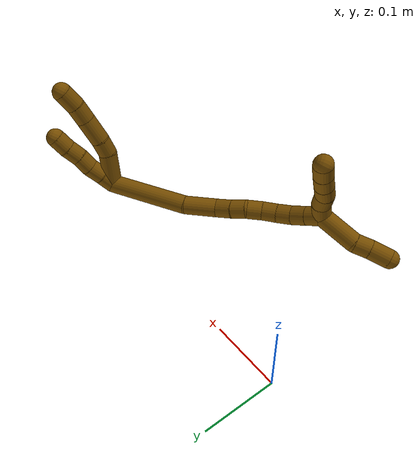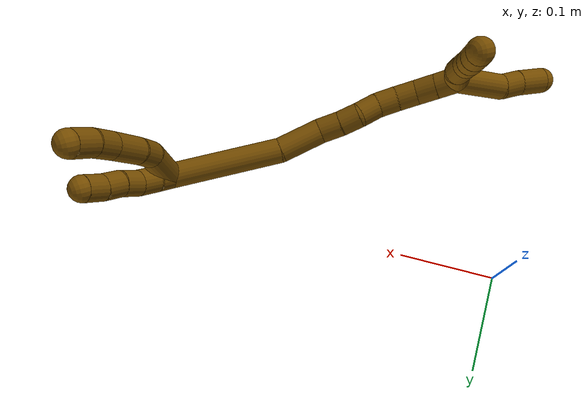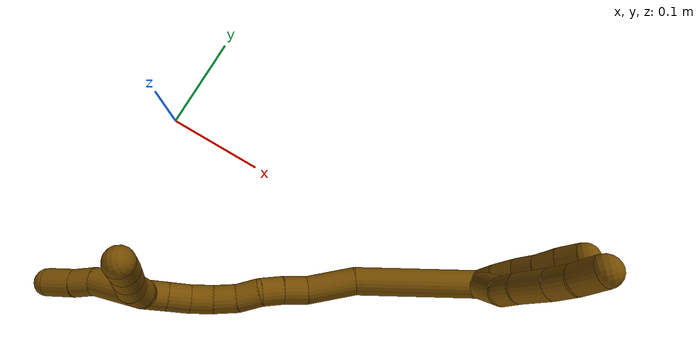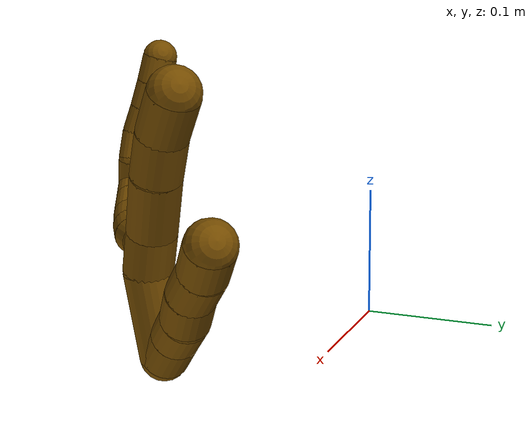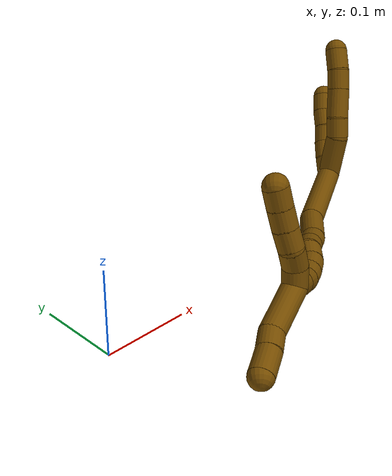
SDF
<sdf version="1.7">
 <world name="default">
  <model name="12">
   <static>0</static>
   <link name="12">
    <collision name="collision-cylinder-e_1_2_8">
     <pose>0.006057 -0.020155 0.011337 1.05842 0.256178 0.150369</pose>
     <geometry><cylinder><radius>0.0125</radius><length>0.047809</length></cylinder></geometry>
     <surface>
      <friction><ode><mu>1.16</mu><mu2>1.16</mu2><slip1>0</slip1><slip2>0</slip2></ode></friction>
      <contact><ode><kp>1e+06</kp><kd>1</kd><max_vel>0</max_vel><min_depth>0.001</min_depth></ode></contact>
     </surface>
    </collision>
    <visual name="visual-cylinder-e_1_2_8">
     <pose>0.006057 -0.020155 0.011337 1.05842 0.256178 0.150369</pose>
     <geometry><cylinder><radius>0.0125</radius><length>0.047809</length></cylinder></geometry>
     <material><ambient>0.466667 0.301961 0 1</ambient></material>
    </visual>
    <collision name="collision-cylinder-e_2_8_9">
     <pose>0.012549 -0.048483 0.03026 0.822571 0.039001 0.017012</pose>
     <geometry><cylinder><radius>0.0125</radius><length>0.022321</length></cylinder></geometry>
     <surface>
      <friction><ode><mu>1.16</mu><mu2>1.16</mu2><slip1>0</slip1><slip2>0</slip2></ode></friction>
      <contact><ode><kp>1e+06</kp><kd>1</kd><max_vel>0</max_vel><min_depth>0.001</min_depth></ode></contact>
     </surface>
    </collision>
    <visual name="visual-cylinder-e_2_8_9">
     <pose>0.012549 -0.048483 0.03026 0.822571 0.039001 0.017012</pose>
     <geometry><cylinder><radius>0.0125</radius><length>0.022321</length></cylinder></geometry>
     <material><ambient>0.466667 0.301961 0 1</ambient></material>
    </visual>
    <collision name="collision-cylinder-e_3_9_10">
     <pose>0.014317 -0.067016 0.050857 0.67253 0.079948 0.027958</pose>
     <geometry><cylinder><radius>0.0125</radius><length>0.033367</length></cylinder></geometry>
     <surface>
      <friction><ode><mu>1.16</mu><mu2>1.16</mu2><slip1>0</slip1><slip2>0</slip2></ode></friction>
      <contact><ode><kp>1e+06</kp><kd>1</kd><max_vel>0</max_vel><min_depth>0.001</min_depth></ode></contact>
     </surface>
    </collision>
    <visual name="visual-cylinder-e_3_9_10">
     <pose>0.014317 -0.067016 0.050857 0.67253 0.079948 0.027958</pose>
     <geometry><cylinder><radius>0.0125</radius><length>0.033367</length></cylinder></geometry>
     <material><ambient>0.466667 0.301961 0 1</ambient></material>
    </visual>
    <collision name="collision-cylinder-e_4_10_11">
     <pose>0.015861 -0.084831 0.072421 0.716732 0.018652 0.006986</pose>
     <geometry><cylinder><radius>0.0125</radius><length>0.022701</length></cylinder></geometry>
     <surface>
      <friction><ode><mu>1.16</mu><mu2>1.16</mu2><slip1>0</slip1><slip2>0</slip2></ode></friction>
      <contact><ode><kp>1e+06</kp><kd>1</kd><max_vel>0</max_vel><min_depth>0.001</min_depth></ode></contact>
     </surface>
    </collision>
    <visual name="visual-cylinder-e_4_10_11">
     <pose>0.015861 -0.084831 0.072421 0.716732 0.018652 0.006986</pose>
     <geometry><cylinder><radius>0.0125</radius><length>0.022701</length></cylinder></geometry>
     <material><ambient>0.466667 0.301961 0 1</ambient></material>
    </visual>
    <collision name="collision-cylinder-e_5_11_6">
     <pose>0.015303 -0.098823 0.090893 0.582867 -0.064731 -0.019424</pose>
     <geometry><cylinder><radius>0.0125</radius><length>0.023803</length></cylinder></geometry>
     <surface>
      <friction><ode><mu>1.16</mu><mu2>1.16</mu2><slip1>0</slip1><slip2>0</slip2></ode></friction>
      <contact><ode><kp>1e+06</kp><kd>1</kd><max_vel>0</max_vel><min_depth>0.001</min_depth></ode></contact>
     </surface>
    </collision>
    <visual name="visual-cylinder-e_5_11_6">
     <pose>0.015303 -0.098823 0.090893 0.582867 -0.064731 -0.019424</pose>
     <geometry><cylinder><radius>0.0125</radius><length>0.023803</length></cylinder></geometry>
     <material><ambient>0.466667 0.301961 0 1</ambient></material>
    </visual>
    <collision name="collision-cylinder-e_1_2_12">
     <pose>-0.00093 -0.00413 0.00906 0.427752 -0.093155 -0.020247</pose>
     <geometry><cylinder><radius>0.0125</radius><length>0.02</length></cylinder></geometry>
     <surface>
      <friction><ode><mu>1.16</mu><mu2>1.16</mu2><slip1>0</slip1><slip2>0</slip2></ode></friction>
      <contact><ode><kp>1e+06</kp><kd>1</kd><max_vel>0</max_vel><min_depth>0.001</min_depth></ode></contact>
     </surface>
    </collision>
    <visual name="visual-cylinder-e_1_2_12">
     <pose>-0.00093 -0.00413 0.00906 0.427752 -0.093155 -0.020247</pose>
     <geometry><cylinder><radius>0.0125</radius><length>0.02</length></cylinder></geometry>
     <material><ambient>0.466667 0.301961 0 1</ambient></material>
    </visual>
    <collision name="collision-cylinder-e_2_12_13">
     <pose>-0.002304 -0.011424 0.027595 0.322234 -0.044398 -0.007217</pose>
     <geometry><cylinder><radius>0.0125</radius><length>0.02</length></cylinder></geometry>
     <surface>
      <friction><ode><mu>1.16</mu><mu2>1.16</mu2><slip1>0</slip1><slip2>0</slip2></ode></friction>
      <contact><ode><kp>1e+06</kp><kd>1</kd><max_vel>0</max_vel><min_depth>0.001</min_depth></ode></contact>
     </surface>
    </collision>
    <visual name="visual-cylinder-e_2_12_13">
     <pose>-0.002304 -0.011424 0.027595 0.322234 -0.044398 -0.007217</pose>
     <geometry><cylinder><radius>0.0125</radius><length>0.02</length></cylinder></geometry>
     <material><ambient>0.466667 0.301961 0 1</ambient></material>
    </visual>
    <collision name="collision-cylinder-e_3_13_14">
     <pose>-0.002241 -0.019359 0.045845 0.497995 0.050766 0.012911</pose>
     <geometry><cylinder><radius>0.0125</radius><length>0.02</length></cylinder></geometry>
     <surface>
      <friction><ode><mu>1.16</mu><mu2>1.16</mu2><slip1>0</slip1><slip2>0</slip2></ode></friction>
      <contact><ode><kp>1e+06</kp><kd>1</kd><max_vel>0</max_vel><min_depth>0.001</min_depth></ode></contact>
     </surface>
    </collision>
    <visual name="visual-cylinder-e_3_13_14">
     <pose>-0.002241 -0.019359 0.045845 0.497995 0.050766 0.012911</pose>
     <geometry><cylinder><radius>0.0125</radius><length>0.02</length></cylinder></geometry>
     <material><ambient>0.466667 0.301961 0 1</ambient></material>
    </visual>
    <collision name="collision-cylinder-e_4_14_15">
     <pose>-0.002512 -0.028008 0.063803 0.399632 -0.077939 -0.015792</pose>
     <geometry><cylinder><radius>0.0125</radius><length>0.02</length></cylinder></geometry>
     <surface>
      <friction><ode><mu>1.16</mu><mu2>1.16</mu2><slip1>0</slip1><slip2>0</slip2></ode></friction>
      <contact><ode><kp>1e+06</kp><kd>1</kd><max_vel>0</max_vel><min_depth>0.001</min_depth></ode></contact>
     </surface>
    </collision>
    <visual name="visual-cylinder-e_4_14_15">
     <pose>-0.002512 -0.028008 0.063803 0.399632 -0.077939 -0.015792</pose>
     <geometry><cylinder><radius>0.0125</radius><length>0.02</length></cylinder></geometry>
     <material><ambient>0.466667 0.301961 0 1</ambient></material>
    </visual>
    <collision name="collision-cylinder-e_5_15_5">
     <pose>-0.002962 -0.036351 0.08193 0.463019 0.03283 0.00774</pose>
     <geometry><cylinder><radius>0.0125</radius><length>0.02</length></cylinder></geometry>
     <surface>
      <friction><ode><mu>1.16</mu><mu2>1.16</mu2><slip1>0</slip1><slip2>0</slip2></ode></friction>
      <contact><ode><kp>1e+06</kp><kd>1</kd><max_vel>0</max_vel><min_depth>0.001</min_depth></ode></contact>
     </surface>
    </collision>
    <visual name="visual-cylinder-e_5_15_5">
     <pose>-0.002962 -0.036351 0.08193 0.463019 0.03283 0.00774</pose>
     <geometry><cylinder><radius>0.0125</radius><length>0.02</length></cylinder></geometry>
     <material><ambient>0.466667 0.301961 0 1</ambient></material>
    </visual>
    <collision name="collision-cylinder-e_1_2_16">
     <pose>-0.009044 -0.021891 -0.050155 2.73005 -0.163786 -0.749299</pose>
     <geometry><cylinder><radius>0.0125</radius><length>0.110934</length></cylinder></geometry>
     <surface>
      <friction><ode><mu>1.16</mu><mu2>1.16</mu2><slip1>0</slip1><slip2>0</slip2></ode></friction>
      <contact><ode><kp>1e+06</kp><kd>1</kd><max_vel>0</max_vel><min_depth>0.001</min_depth></ode></contact>
     </surface>
    </collision>
    <visual name="visual-cylinder-e_1_2_16">
     <pose>-0.009044 -0.021891 -0.050155 2.73005 -0.163786 -0.749299</pose>
     <geometry><cylinder><radius>0.0125</radius><length>0.110934</length></cylinder></geometry>
     <material><ambient>0.466667 0.301961 0 1</ambient></material>
    </visual>
    <collision name="collision-cylinder-e_2_16_17">
     <pose>-0.01687 -0.053241 -0.120219 2.69806 0.055224 0.243772</pose>
     <geometry><cylinder><radius>0.0125</radius><length>0.04415</length></cylinder></geometry>
     <surface>
      <friction><ode><mu>1.16</mu><mu2>1.16</mu2><slip1>0</slip1><slip2>0</slip2></ode></friction>
      <contact><ode><kp>1e+06</kp><kd>1</kd><max_vel>0</max_vel><min_depth>0.001</min_depth></ode></contact>
     </surface>
    </collision>
    <visual name="visual-cylinder-e_2_16_17">
     <pose>-0.01687 -0.053241 -0.120219 2.69806 0.055224 0.243772</pose>
     <geometry><cylinder><radius>0.0125</radius><length>0.04415</length></cylinder></geometry>
     <material><ambient>0.466667 0.301961 0 1</ambient></material>
    </visual>
    <collision name="collision-cylinder-e_3_17_18">
     <pose>-0.016837 -0.069395 -0.148886 2.48896 -0.10714 -0.314285</pose>
     <geometry><cylinder><radius>0.0125</radius><length>0.022176</length></cylinder></geometry>
     <surface>
      <friction><ode><mu>1.16</mu><mu2>1.16</mu2><slip1>0</slip1><slip2>0</slip2></ode></friction>
      <contact><ode><kp>1e+06</kp><kd>1</kd><max_vel>0</max_vel><min_depth>0.001</min_depth></ode></contact>
     </surface>
    </collision>
    <visual name="visual-cylinder-e_3_17_18">
     <pose>-0.016837 -0.069395 -0.148886 2.48896 -0.10714 -0.314285</pose>
     <geometry><cylinder><radius>0.0125</radius><length>0.022176</length></cylinder></geometry>
     <material><ambient>0.466667 0.301961 0 1</ambient></material>
    </visual>
    <collision name="collision-cylinder-e_4_18_19">
     <pose>-0.018192 -0.082241 -0.165577 2.48193 -0.016862 -0.049247</pose>
     <geometry><cylinder><radius>0.0125</radius><length>0.020079</length></cylinder></geometry>
     <surface>
      <friction><ode><mu>1.16</mu><mu2>1.16</mu2><slip1>0</slip1><slip2>0</slip2></ode></friction>
      <contact><ode><kp>1e+06</kp><kd>1</kd><max_vel>0</max_vel><min_depth>0.001</min_depth></ode></contact>
     </surface>
    </collision>
    <visual name="visual-cylinder-e_4_18_19">
     <pose>-0.018192 -0.082241 -0.165577 2.48193 -0.016862 -0.049247</pose>
     <geometry><cylinder><radius>0.0125</radius><length>0.020079</length></cylinder></geometry>
     <material><ambient>0.466667 0.301961 0 1</ambient></material>
    </visual>
    <collision name="collision-cylinder-e_5_19_20">
     <pose>-0.017186 -0.092067 -0.183148 2.77748 0.113495 0.598622</pose>
     <geometry><cylinder><radius>0.0125</radius><length>0.020764</length></cylinder></geometry>
     <surface>
      <friction><ode><mu>1.16</mu><mu2>1.16</mu2><slip1>0</slip1><slip2>0</slip2></ode></friction>
      <contact><ode><kp>1e+06</kp><kd>1</kd><max_vel>0</max_vel><min_depth>0.001</min_depth></ode></contact>
     </surface>
    </collision>
    <visual name="visual-cylinder-e_5_19_20">
     <pose>-0.017186 -0.092067 -0.183148 2.77748 0.113495 0.598622</pose>
     <geometry><cylinder><radius>0.0125</radius><length>0.020764</length></cylinder></geometry>
     <material><ambient>0.466667 0.301961 0 1</ambient></material>
    </visual>
    <collision name="collision-cylinder-e_6_20_21">
     <pose>-0.016854 -0.100693 -0.201876 2.64268 -0.08138 -0.316928</pose>
     <geometry><cylinder><radius>0.0125</radius><length>0.02077</length></cylinder></geometry>
     <surface>
      <friction><ode><mu>1.16</mu><mu2>1.16</mu2><slip1>0</slip1><slip2>0</slip2></ode></friction>
      <contact><ode><kp>1e+06</kp><kd>1</kd><max_vel>0</max_vel><min_depth>0.001</min_depth></ode></contact>
     </surface>
    </collision>
    <visual name="visual-cylinder-e_6_20_21">
     <pose>-0.016854 -0.100693 -0.201876 2.64268 -0.08138 -0.316928</pose>
     <geometry><cylinder><radius>0.0125</radius><length>0.02077</length></cylinder></geometry>
     <material><ambient>0.466667 0.301961 0 1</ambient></material>
    </visual>
    <collision name="collision-cylinder-e_7_21_22">
     <pose>-0.01914 -0.111504 -0.219237 2.52534 -0.141282 -0.43754</pose>
     <geometry><cylinder><radius>0.0125</radius><length>0.020477</length></cylinder></geometry>
     <surface>
      <friction><ode><mu>1.16</mu><mu2>1.16</mu2><slip1>0</slip1><slip2>0</slip2></ode></friction>
      <contact><ode><kp>1e+06</kp><kd>1</kd><max_vel>0</max_vel><min_depth>0.001</min_depth></ode></contact>
     </surface>
    </collision>
    <visual name="visual-cylinder-e_7_21_22">
     <pose>-0.01914 -0.111504 -0.219237 2.52534 -0.141282 -0.43754</pose>
     <geometry><cylinder><radius>0.0125</radius><length>0.020477</length></cylinder></geometry>
     <material><ambient>0.466667 0.301961 0 1</ambient></material>
    </visual>
    <collision name="collision-cylinder-e_8_22_23">
     <pose>-0.022521 -0.124671 -0.234413 2.32778 -0.190545 -0.436422</pose>
     <geometry><cylinder><radius>0.0125</radius><length>0.020478</length></cylinder></geometry>
     <surface>
      <friction><ode><mu>1.16</mu><mu2>1.16</mu2><slip1>0</slip1><slip2>0</slip2></ode></friction>
      <contact><ode><kp>1e+06</kp><kd>1</kd><max_vel>0</max_vel><min_depth>0.001</min_depth></ode></contact>
     </surface>
    </collision>
    <visual name="visual-cylinder-e_8_22_23">
     <pose>-0.022521 -0.124671 -0.234413 2.32778 -0.190545 -0.436422</pose>
     <geometry><cylinder><radius>0.0125</radius><length>0.020478</length></cylinder></geometry>
     <material><ambient>0.466667 0.301961 0 1</ambient></material>
    </visual>
    <collision name="collision-cylinder-e_9_23_1">
     <pose>-0.02633 -0.139171 -0.248137 2.32959 -0.186493 -0.428407</pose>
     <geometry><cylinder><radius>0.0125</radius><length>0.020172</length></cylinder></geometry>
     <surface>
      <friction><ode><mu>1.16</mu><mu2>1.16</mu2><slip1>0</slip1><slip2>0</slip2></ode></friction>
      <contact><ode><kp>1e+06</kp><kd>1</kd><max_vel>0</max_vel><min_depth>0.001</min_depth></ode></contact>
     </surface>
    </collision>
    <visual name="visual-cylinder-e_9_23_1">
     <pose>-0.02633 -0.139171 -0.248137 2.32959 -0.186493 -0.428407</pose>
     <geometry><cylinder><radius>0.0125</radius><length>0.020172</length></cylinder></geometry>
     <material><ambient>0.466667 0.301961 0 1</ambient></material>
    </visual>
    <collision name="collision-cylinder-e_1_1_24">
     <pose>-0.027457 -0.154719 -0.249512 0.993278 0.074424 0.040347</pose>
     <geometry><cylinder><radius>0.0125</radius><length>0.02</length></cylinder></geometry>
     <surface>
      <friction><ode><mu>1.16</mu><mu2>1.16</mu2><slip1>0</slip1><slip2>0</slip2></ode></friction>
      <contact><ode><kp>1e+06</kp><kd>1</kd><max_vel>0</max_vel><min_depth>0.001</min_depth></ode></contact>
     </surface>
    </collision>
    <visual name="visual-cylinder-e_1_1_24">
     <pose>-0.027457 -0.154719 -0.249512 0.993278 0.074424 0.040347</pose>
     <geometry><cylinder><radius>0.0125</radius><length>0.02</length></cylinder></geometry>
     <material><ambient>0.466667 0.301961 0 1</ambient></material>
    </visual>
    <collision name="collision-cylinder-e_2_24_25">
     <pose>-0.027775 -0.172632 -0.241328 1.29165 -0.106428 -0.080241</pose>
     <geometry><cylinder><radius>0.0125</radius><length>0.02</length></cylinder></geometry>
     <surface>
      <friction><ode><mu>1.16</mu><mu2>1.16</mu2><slip1>0</slip1><slip2>0</slip2></ode></friction>
      <contact><ode><kp>1e+06</kp><kd>1</kd><max_vel>0</max_vel><min_depth>0.001</min_depth></ode></contact>
     </surface>
    </collision>
    <visual name="visual-cylinder-e_2_24_25">
     <pose>-0.027775 -0.172632 -0.241328 1.29165 -0.106428 -0.080241</pose>
     <geometry><cylinder><radius>0.0125</radius><length>0.02</length></cylinder></geometry>
     <material><ambient>0.466667 0.301961 0 1</ambient></material>
    </visual>
    <collision name="collision-cylinder-e_3_25_26">
     <pose>-0.030924 -0.190501 -0.233432 1.01547 -0.210182 -0.117241</pose>
     <geometry><cylinder><radius>0.0125</radius><length>0.02</length></cylinder></geometry>
     <surface>
      <friction><ode><mu>1.16</mu><mu2>1.16</mu2><slip1>0</slip1><slip2>0</slip2></ode></friction>
      <contact><ode><kp>1e+06</kp><kd>1</kd><max_vel>0</max_vel><min_depth>0.001</min_depth></ode></contact>
     </surface>
    </collision>
    <visual name="visual-cylinder-e_3_25_26">
     <pose>-0.030924 -0.190501 -0.233432 1.01547 -0.210182 -0.117241</pose>
     <geometry><cylinder><radius>0.0125</radius><length>0.02</length></cylinder></geometry>
     <material><ambient>0.466667 0.301961 0 1</ambient></material>
    </visual>
    <collision name="collision-cylinder-e_4_26_27">
     <pose>-0.034711 -0.207201 -0.223107 1.01864 -0.170891 -0.095597</pose>
     <geometry><cylinder><radius>0.0125</radius><length>0.02</length></cylinder></geometry>
     <surface>
      <friction><ode><mu>1.16</mu><mu2>1.16</mu2><slip1>0</slip1><slip2>0</slip2></ode></friction>
      <contact><ode><kp>1e+06</kp><kd>1</kd><max_vel>0</max_vel><min_depth>0.001</min_depth></ode></contact>
     </surface>
    </collision>
    <visual name="visual-cylinder-e_4_26_27">
     <pose>-0.034711 -0.207201 -0.223107 1.01864 -0.170891 -0.095597</pose>
     <geometry><cylinder><radius>0.0125</radius><length>0.02</length></cylinder></geometry>
     <material><ambient>0.466667 0.301961 0 1</ambient></material>
    </visual>
    <collision name="collision-cylinder-e_5_27_4">
     <pose>-0.037835 -0.224229 -0.213104 1.06064 -0.142851 -0.083854</pose>
     <geometry><cylinder><radius>0.0125</radius><length>0.02</length></cylinder></geometry>
     <surface>
      <friction><ode><mu>1.16</mu><mu2>1.16</mu2><slip1>0</slip1><slip2>0</slip2></ode></friction>
      <contact><ode><kp>1e+06</kp><kd>1</kd><max_vel>0</max_vel><min_depth>0.001</min_depth></ode></contact>
     </surface>
    </collision>
    <visual name="visual-cylinder-e_5_27_4">
     <pose>-0.037835 -0.224229 -0.213104 1.06064 -0.142851 -0.083854</pose>
     <geometry><cylinder><radius>0.0125</radius><length>0.02</length></cylinder></geometry>
     <material><ambient>0.466667 0.301961 0 1</ambient></material>
    </visual>
    <collision name="collision-cylinder-e_1_1_28">
     <pose>-0.037875 -0.147132 -0.279128 3.10983 -0.380535 -2.97703</pose>
     <geometry><cylinder><radius>0.0125</radius><length>0.052095</length></cylinder></geometry>
     <surface>
      <friction><ode><mu>1.16</mu><mu2>1.16</mu2><slip1>0</slip1><slip2>0</slip2></ode></friction>
      <contact><ode><kp>1e+06</kp><kd>1</kd><max_vel>0</max_vel><min_depth>0.001</min_depth></ode></contact>
     </surface>
    </collision>
    <visual name="visual-cylinder-e_1_1_28">
     <pose>-0.037875 -0.147132 -0.279128 3.10983 -0.380535 -2.97703</pose>
     <geometry><cylinder><radius>0.0125</radius><length>0.052095</length></cylinder></geometry>
     <material><ambient>0.466667 0.301961 0 1</ambient></material>
    </visual>
    <collision name="collision-cylinder-e_2_28_29">
     <pose>-0.048423 -0.149551 -0.313457 2.98046 -0.08468 -0.966443</pose>
     <geometry><cylinder><radius>0.0125</radius><length>0.020655</length></cylinder></geometry>
     <surface>
      <friction><ode><mu>1.16</mu><mu2>1.16</mu2><slip1>0</slip1><slip2>0</slip2></ode></friction>
      <contact><ode><kp>1e+06</kp><kd>1</kd><max_vel>0</max_vel><min_depth>0.001</min_depth></ode></contact>
     </surface>
    </collision>
    <visual name="visual-cylinder-e_2_28_29">
     <pose>-0.048423 -0.149551 -0.313457 2.98046 -0.08468 -0.966443</pose>
     <geometry><cylinder><radius>0.0125</radius><length>0.020655</length></cylinder></geometry>
     <material><ambient>0.466667 0.301961 0 1</ambient></material>
    </visual>
    <collision name="collision-cylinder-e_3_29_3">
     <pose>-0.051973 -0.153553 -0.336765 2.96466 -0.197745 -1.68242</pose>
     <geometry><cylinder><radius>0.0125</radius><length>0.02725</length></cylinder></geometry>
     <surface>
      <friction><ode><mu>1.16</mu><mu2>1.16</mu2><slip1>0</slip1><slip2>0</slip2></ode></friction>
      <contact><ode><kp>1e+06</kp><kd>1</kd><max_vel>0</max_vel><min_depth>0.001</min_depth></ode></contact>
     </surface>
    </collision>
    <visual name="visual-cylinder-e_3_29_3">
     <pose>-0.051973 -0.153553 -0.336765 2.96466 -0.197745 -1.68242</pose>
     <geometry><cylinder><radius>0.0125</radius><length>0.02725</length></cylinder></geometry>
     <material><ambient>0.466667 0.301961 0 1</ambient></material>
    </visual>
    <collision name="collision-sphere-3">
     <pose>-0.05465 -0.155904 -0.349916 0 -0 0</pose>
     <geometry><sphere><radius>0.0125</radius></sphere></geometry>
     <surface>
      <friction><ode><mu>1.16</mu><mu2>1.16</mu2><slip1>0</slip1><slip2>0</slip2></ode></friction>
      <contact><ode><kp>1e+06</kp><kd>1</kd><max_vel>0</max_vel><min_depth>0.001</min_depth></ode></contact>
     </surface>
    </collision>
    <visual name="visual-sphere-3">
     <pose>-0.05465 -0.155904 -0.349916 0 -0 0</pose>
     <geometry><sphere><radius>0.0125</radius></sphere></geometry>
     <material><ambient>0.466667 0.301961 0 1</ambient></material>
    </visual>
    <collision name="collision-sphere-29">
     <pose>-0.049296 -0.151202 -0.323614 0 -0 0</pose>
     <geometry><sphere><radius>0.0125</radius></sphere></geometry>
     <surface>
      <friction><ode><mu>1.16</mu><mu2>1.16</mu2><slip1>0</slip1><slip2>0</slip2></ode></friction>
      <contact><ode><kp>1e+06</kp><kd>1</kd><max_vel>0</max_vel><min_depth>0.001</min_depth></ode></contact>
     </surface>
    </collision>
    <visual name="visual-sphere-29">
     <pose>-0.049296 -0.151202 -0.323614 0 -0 0</pose>
     <geometry><sphere><radius>0.0125</radius></sphere></geometry>
     <material><ambient>0.466667 0.301961 0 1</ambient></material>
    </visual>
    <collision name="collision-sphere-28">
     <pose>-0.047549 -0.1479 -0.3033 0 -0 0</pose>
     <geometry><sphere><radius>0.0125</radius></sphere></geometry>
     <surface>
      <friction><ode><mu>1.16</mu><mu2>1.16</mu2><slip1>0</slip1><slip2>0</slip2></ode></friction>
      <contact><ode><kp>1e+06</kp><kd>1</kd><max_vel>0</max_vel><min_depth>0.001</min_depth></ode></contact>
     </surface>
    </collision>
    <visual name="visual-sphere-28">
     <pose>-0.047549 -0.1479 -0.3033 0 -0 0</pose>
     <geometry><sphere><radius>0.0125</radius></sphere></geometry>
     <material><ambient>0.466667 0.301961 0 1</ambient></material>
    </visual>
    <collision name="collision-sphere-4">
     <pose>-0.039259 -0.232867 -0.208271 0 -0 0</pose>
     <geometry><sphere><radius>0.0125</radius></sphere></geometry>
     <surface>
      <friction><ode><mu>1.16</mu><mu2>1.16</mu2><slip1>0</slip1><slip2>0</slip2></ode></friction>
      <contact><ode><kp>1e+06</kp><kd>1</kd><max_vel>0</max_vel><min_depth>0.001</min_depth></ode></contact>
     </surface>
    </collision>
    <visual name="visual-sphere-4">
     <pose>-0.039259 -0.232867 -0.208271 0 -0 0</pose>
     <geometry><sphere><radius>0.0125</radius></sphere></geometry>
     <material><ambient>0.466667 0.301961 0 1</ambient></material>
    </visual>
    <collision name="collision-sphere-27">
     <pose>-0.036412 -0.215591 -0.217938 0 -0 0</pose>
     <geometry><sphere><radius>0.0125</radius></sphere></geometry>
     <surface>
      <friction><ode><mu>1.16</mu><mu2>1.16</mu2><slip1>0</slip1><slip2>0</slip2></ode></friction>
      <contact><ode><kp>1e+06</kp><kd>1</kd><max_vel>0</max_vel><min_depth>0.001</min_depth></ode></contact>
     </surface>
    </collision>
    <visual name="visual-sphere-27">
     <pose>-0.036412 -0.215591 -0.217938 0 -0 0</pose>
     <geometry><sphere><radius>0.0125</radius></sphere></geometry>
     <material><ambient>0.466667 0.301961 0 1</ambient></material>
    </visual>
    <collision name="collision-sphere-26">
     <pose>-0.03301 -0.198811 -0.228275 0 -0 0</pose>
     <geometry><sphere><radius>0.0125</radius></sphere></geometry>
     <surface>
      <friction><ode><mu>1.16</mu><mu2>1.16</mu2><slip1>0</slip1><slip2>0</slip2></ode></friction>
      <contact><ode><kp>1e+06</kp><kd>1</kd><max_vel>0</max_vel><min_depth>0.001</min_depth></ode></contact>
     </surface>
    </collision>
    <visual name="visual-sphere-26">
     <pose>-0.03301 -0.198811 -0.228275 0 -0 0</pose>
     <geometry><sphere><radius>0.0125</radius></sphere></geometry>
     <material><ambient>0.466667 0.301961 0 1</ambient></material>
    </visual>
    <collision name="collision-sphere-25">
     <pose>-0.028838 -0.182191 -0.238588 0 -0 0</pose>
     <geometry><sphere><radius>0.0125</radius></sphere></geometry>
     <surface>
      <friction><ode><mu>1.16</mu><mu2>1.16</mu2><slip1>0</slip1><slip2>0</slip2></ode></friction>
      <contact><ode><kp>1e+06</kp><kd>1</kd><max_vel>0</max_vel><min_depth>0.001</min_depth></ode></contact>
     </surface>
    </collision>
    <visual name="visual-sphere-25">
     <pose>-0.028838 -0.182191 -0.238588 0 -0 0</pose>
     <geometry><sphere><radius>0.0125</radius></sphere></geometry>
     <material><ambient>0.466667 0.301961 0 1</ambient></material>
    </visual>
    <collision name="collision-sphere-24">
     <pose>-0.026713 -0.163074 -0.244067 0 -0 0</pose>
     <geometry><sphere><radius>0.0125</radius></sphere></geometry>
     <surface>
      <friction><ode><mu>1.16</mu><mu2>1.16</mu2><slip1>0</slip1><slip2>0</slip2></ode></friction>
      <contact><ode><kp>1e+06</kp><kd>1</kd><max_vel>0</max_vel><min_depth>0.001</min_depth></ode></contact>
     </surface>
    </collision>
    <visual name="visual-sphere-24">
     <pose>-0.026713 -0.163074 -0.244067 0 -0 0</pose>
     <geometry><sphere><radius>0.0125</radius></sphere></geometry>
     <material><ambient>0.466667 0.301961 0 1</ambient></material>
    </visual>
    <collision name="collision-sphere-1">
     <pose>-0.0282 -0.146364 -0.254956 0 -0 0</pose>
     <geometry><sphere><radius>0.0125</radius></sphere></geometry>
     <surface>
      <friction><ode><mu>1.16</mu><mu2>1.16</mu2><slip1>0</slip1><slip2>0</slip2></ode></friction>
      <contact><ode><kp>1e+06</kp><kd>1</kd><max_vel>0</max_vel><min_depth>0.001</min_depth></ode></contact>
     </surface>
    </collision>
    <visual name="visual-sphere-1">
     <pose>-0.0282 -0.146364 -0.254956 0 -0 0</pose>
     <geometry><sphere><radius>0.0125</radius></sphere></geometry>
     <material><ambient>0.466667 0.301961 0 1</ambient></material>
    </visual>
    <collision name="collision-sphere-23">
     <pose>-0.02446 -0.131979 -0.241317 0 -0 0</pose>
     <geometry><sphere><radius>0.0125</radius></sphere></geometry>
     <surface>
      <friction><ode><mu>1.16</mu><mu2>1.16</mu2><slip1>0</slip1><slip2>0</slip2></ode></friction>
      <contact><ode><kp>1e+06</kp><kd>1</kd><max_vel>0</max_vel><min_depth>0.001</min_depth></ode></contact>
     </surface>
    </collision>
    <visual name="visual-sphere-23">
     <pose>-0.02446 -0.131979 -0.241317 0 -0 0</pose>
     <geometry><sphere><radius>0.0125</radius></sphere></geometry>
     <material><ambient>0.466667 0.301961 0 1</ambient></material>
    </visual>
    <collision name="collision-sphere-22">
     <pose>-0.020582 -0.117363 -0.227509 0 -0 0</pose>
     <geometry><sphere><radius>0.0125</radius></sphere></geometry>
     <surface>
      <friction><ode><mu>1.16</mu><mu2>1.16</mu2><slip1>0</slip1><slip2>0</slip2></ode></friction>
      <contact><ode><kp>1e+06</kp><kd>1</kd><max_vel>0</max_vel><min_depth>0.001</min_depth></ode></contact>
     </surface>
    </collision>
    <visual name="visual-sphere-22">
     <pose>-0.020582 -0.117363 -0.227509 0 -0 0</pose>
     <geometry><sphere><radius>0.0125</radius></sphere></geometry>
     <material><ambient>0.466667 0.301961 0 1</ambient></material>
    </visual>
    <collision name="collision-sphere-21">
     <pose>-0.017698 -0.105645 -0.210965 0 -0 0</pose>
     <geometry><sphere><radius>0.0125</radius></sphere></geometry>
     <surface>
      <friction><ode><mu>1.16</mu><mu2>1.16</mu2><slip1>0</slip1><slip2>0</slip2></ode></friction>
      <contact><ode><kp>1e+06</kp><kd>1</kd><max_vel>0</max_vel><min_depth>0.001</min_depth></ode></contact>
     </surface>
    </collision>
    <visual name="visual-sphere-21">
     <pose>-0.017698 -0.105645 -0.210965 0 -0 0</pose>
     <geometry><sphere><radius>0.0125</radius></sphere></geometry>
     <material><ambient>0.466667 0.301961 0 1</ambient></material>
    </visual>
    <collision name="collision-sphere-6">
     <pose>0.014533 -0.10536 0.100809 0 -0 0</pose>
     <geometry><sphere><radius>0.0125</radius></sphere></geometry>
     <surface>
      <friction><ode><mu>1.16</mu><mu2>1.16</mu2><slip1>0</slip1><slip2>0</slip2></ode></friction>
      <contact><ode><kp>1e+06</kp><kd>1</kd><max_vel>0</max_vel><min_depth>0.001</min_depth></ode></contact>
     </surface>
    </collision>
    <visual name="visual-sphere-6">
     <pose>0.014533 -0.10536 0.100809 0 -0 0</pose>
     <geometry><sphere><radius>0.0125</radius></sphere></geometry>
     <material><ambient>0.466667 0.301961 0 1</ambient></material>
    </visual>
    <collision name="collision-sphere-11">
     <pose>0.016073 -0.092286 0.080978 0 -0 0</pose>
     <geometry><sphere><radius>0.0125</radius></sphere></geometry>
     <surface>
      <friction><ode><mu>1.16</mu><mu2>1.16</mu2><slip1>0</slip1><slip2>0</slip2></ode></friction>
      <contact><ode><kp>1e+06</kp><kd>1</kd><max_vel>0</max_vel><min_depth>0.001</min_depth></ode></contact>
     </surface>
    </collision>
    <visual name="visual-sphere-11">
     <pose>0.016073 -0.092286 0.080978 0 -0 0</pose>
     <geometry><sphere><radius>0.0125</radius></sphere></geometry>
     <material><ambient>0.466667 0.301961 0 1</ambient></material>
    </visual>
    <collision name="collision-sphere-10">
     <pose>0.015649 -0.077376 0.063865 0 -0 0</pose>
     <geometry><sphere><radius>0.0125</radius></sphere></geometry>
     <surface>
      <friction><ode><mu>1.16</mu><mu2>1.16</mu2><slip1>0</slip1><slip2>0</slip2></ode></friction>
      <contact><ode><kp>1e+06</kp><kd>1</kd><max_vel>0</max_vel><min_depth>0.001</min_depth></ode></contact>
     </surface>
    </collision>
    <visual name="visual-sphere-10">
     <pose>0.015649 -0.077376 0.063865 0 -0 0</pose>
     <geometry><sphere><radius>0.0125</radius></sphere></geometry>
     <material><ambient>0.466667 0.301961 0 1</ambient></material>
    </visual>
    <collision name="collision-sphere-9">
     <pose>0.012984 -0.056656 0.037848 0 -0 0</pose>
     <geometry><sphere><radius>0.0125</radius></sphere></geometry>
     <surface>
      <friction><ode><mu>1.16</mu><mu2>1.16</mu2><slip1>0</slip1><slip2>0</slip2></ode></friction>
      <contact><ode><kp>1e+06</kp><kd>1</kd><max_vel>0</max_vel><min_depth>0.001</min_depth></ode></contact>
     </surface>
    </collision>
    <visual name="visual-sphere-9">
     <pose>0.012984 -0.056656 0.037848 0 -0 0</pose>
     <geometry><sphere><radius>0.0125</radius></sphere></geometry>
     <material><ambient>0.466667 0.301961 0 1</ambient></material>
    </visual>
    <collision name="collision-sphere-2">
     <geometry><sphere><radius>0.0125</radius></sphere></geometry>
     <surface>
      <friction><ode><mu>1.16</mu><mu2>1.16</mu2><slip1>0</slip1><slip2>0</slip2></ode></friction>
      <contact><ode><kp>1e+06</kp><kd>1</kd><max_vel>0</max_vel><min_depth>0.001</min_depth></ode></contact>
     </surface>
    </collision>
    <visual name="visual-sphere-2">
     <geometry><sphere><radius>0.0125</radius></sphere></geometry>
     <material><ambient>0.466667 0.301961 0 1</ambient></material>
    </visual>
    <collision name="collision-sphere-19">
     <pose>-0.018361 -0.088393 -0.173509 0 -0 0</pose>
     <geometry><sphere><radius>0.0125</radius></sphere></geometry>
     <surface>
      <friction><ode><mu>1.16</mu><mu2>1.16</mu2><slip1>0</slip1><slip2>0</slip2></ode></friction>
      <contact><ode><kp>1e+06</kp><kd>1</kd><max_vel>0</max_vel><min_depth>0.001</min_depth></ode></contact>
     </surface>
    </collision>
    <visual name="visual-sphere-19">
     <pose>-0.018361 -0.088393 -0.173509 0 -0 0</pose>
     <geometry><sphere><radius>0.0125</radius></sphere></geometry>
     <material><ambient>0.466667 0.301961 0 1</ambient></material>
    </visual>
    <collision name="collision-sphere-8">
     <pose>0.012114 -0.04031 0.022673 0 -0 0</pose>
     <geometry><sphere><radius>0.0125</radius></sphere></geometry>
     <surface>
      <friction><ode><mu>1.16</mu><mu2>1.16</mu2><slip1>0</slip1><slip2>0</slip2></ode></friction>
      <contact><ode><kp>1e+06</kp><kd>1</kd><max_vel>0</max_vel><min_depth>0.001</min_depth></ode></contact>
     </surface>
    </collision>
    <visual name="visual-sphere-8">
     <pose>0.012114 -0.04031 0.022673 0 -0 0</pose>
     <geometry><sphere><radius>0.0125</radius></sphere></geometry>
     <material><ambient>0.466667 0.301961 0 1</ambient></material>
    </visual>
    <collision name="collision-sphere-12">
     <pose>-0.00186 -0.008261 0.018119 0 -0 0</pose>
     <geometry><sphere><radius>0.0125</radius></sphere></geometry>
     <surface>
      <friction><ode><mu>1.16</mu><mu2>1.16</mu2><slip1>0</slip1><slip2>0</slip2></ode></friction>
      <contact><ode><kp>1e+06</kp><kd>1</kd><max_vel>0</max_vel><min_depth>0.001</min_depth></ode></contact>
     </surface>
    </collision>
    <visual name="visual-sphere-12">
     <pose>-0.00186 -0.008261 0.018119 0 -0 0</pose>
     <geometry><sphere><radius>0.0125</radius></sphere></geometry>
     <material><ambient>0.466667 0.301961 0 1</ambient></material>
    </visual>
    <collision name="collision-sphere-13">
     <pose>-0.002748 -0.014588 0.037071 0 -0 0</pose>
     <geometry><sphere><radius>0.0125</radius></sphere></geometry>
     <surface>
      <friction><ode><mu>1.16</mu><mu2>1.16</mu2><slip1>0</slip1><slip2>0</slip2></ode></friction>
      <contact><ode><kp>1e+06</kp><kd>1</kd><max_vel>0</max_vel><min_depth>0.001</min_depth></ode></contact>
     </surface>
    </collision>
    <visual name="visual-sphere-13">
     <pose>-0.002748 -0.014588 0.037071 0 -0 0</pose>
     <geometry><sphere><radius>0.0125</radius></sphere></geometry>
     <material><ambient>0.466667 0.301961 0 1</ambient></material>
    </visual>
    <collision name="collision-sphere-14">
     <pose>-0.001733 -0.024129 0.054619 0 -0 0</pose>
     <geometry><sphere><radius>0.0125</radius></sphere></geometry>
     <surface>
      <friction><ode><mu>1.16</mu><mu2>1.16</mu2><slip1>0</slip1><slip2>0</slip2></ode></friction>
      <contact><ode><kp>1e+06</kp><kd>1</kd><max_vel>0</max_vel><min_depth>0.001</min_depth></ode></contact>
     </surface>
    </collision>
    <visual name="visual-sphere-14">
     <pose>-0.001733 -0.024129 0.054619 0 -0 0</pose>
     <geometry><sphere><radius>0.0125</radius></sphere></geometry>
     <material><ambient>0.466667 0.301961 0 1</ambient></material>
    </visual>
    <collision name="collision-sphere-15">
     <pose>-0.00329 -0.031887 0.072987 0 -0 0</pose>
     <geometry><sphere><radius>0.0125</radius></sphere></geometry>
     <surface>
      <friction><ode><mu>1.16</mu><mu2>1.16</mu2><slip1>0</slip1><slip2>0</slip2></ode></friction>
      <contact><ode><kp>1e+06</kp><kd>1</kd><max_vel>0</max_vel><min_depth>0.001</min_depth></ode></contact>
     </surface>
    </collision>
    <visual name="visual-sphere-15">
     <pose>-0.00329 -0.031887 0.072987 0 -0 0</pose>
     <geometry><sphere><radius>0.0125</radius></sphere></geometry>
     <material><ambient>0.466667 0.301961 0 1</ambient></material>
    </visual>
    <collision name="collision-sphere-5">
     <pose>-0.002634 -0.040815 0.090872 0 -0 0</pose>
     <geometry><sphere><radius>0.0125</radius></sphere></geometry>
     <surface>
      <friction><ode><mu>1.16</mu><mu2>1.16</mu2><slip1>0</slip1><slip2>0</slip2></ode></friction>
      <contact><ode><kp>1e+06</kp><kd>1</kd><max_vel>0</max_vel><min_depth>0.001</min_depth></ode></contact>
     </surface>
    </collision>
    <visual name="visual-sphere-5">
     <pose>-0.002634 -0.040815 0.090872 0 -0 0</pose>
     <geometry><sphere><radius>0.0125</radius></sphere></geometry>
     <material><ambient>0.466667 0.301961 0 1</ambient></material>
    </visual>
    <collision name="collision-sphere-16">
     <pose>-0.018088 -0.043783 -0.10031 0 -0 0</pose>
     <geometry><sphere><radius>0.0125</radius></sphere></geometry>
     <surface>
      <friction><ode><mu>1.16</mu><mu2>1.16</mu2><slip1>0</slip1><slip2>0</slip2></ode></friction>
      <contact><ode><kp>1e+06</kp><kd>1</kd><max_vel>0</max_vel><min_depth>0.001</min_depth></ode></contact>
     </surface>
    </collision>
    <visual name="visual-sphere-16">
     <pose>-0.018088 -0.043783 -0.10031 0 -0 0</pose>
     <geometry><sphere><radius>0.0125</radius></sphere></geometry>
     <material><ambient>0.466667 0.301961 0 1</ambient></material>
    </visual>
    <collision name="collision-sphere-17">
     <pose>-0.015651 -0.0627 -0.140127 0 -0 0</pose>
     <geometry><sphere><radius>0.0125</radius></sphere></geometry>
     <surface>
      <friction><ode><mu>1.16</mu><mu2>1.16</mu2><slip1>0</slip1><slip2>0</slip2></ode></friction>
      <contact><ode><kp>1e+06</kp><kd>1</kd><max_vel>0</max_vel><min_depth>0.001</min_depth></ode></contact>
     </surface>
    </collision>
    <visual name="visual-sphere-17">
     <pose>-0.015651 -0.0627 -0.140127 0 -0 0</pose>
     <geometry><sphere><radius>0.0125</radius></sphere></geometry>
     <material><ambient>0.466667 0.301961 0 1</ambient></material>
    </visual>
    <collision name="collision-sphere-18">
     <pose>-0.018023 -0.07609 -0.157645 0 -0 0</pose>
     <geometry><sphere><radius>0.0125</radius></sphere></geometry>
     <surface>
      <friction><ode><mu>1.16</mu><mu2>1.16</mu2><slip1>0</slip1><slip2>0</slip2></ode></friction>
      <contact><ode><kp>1e+06</kp><kd>1</kd><max_vel>0</max_vel><min_depth>0.001</min_depth></ode></contact>
     </surface>
    </collision>
    <visual name="visual-sphere-18">
     <pose>-0.018023 -0.07609 -0.157645 0 -0 0</pose>
     <geometry><sphere><radius>0.0125</radius></sphere></geometry>
     <material><ambient>0.466667 0.301961 0 1</ambient></material>
    </visual>
    <collision name="collision-sphere-20">
     <pose>-0.01601 -0.09574 -0.192787 0 -0 0</pose>
     <geometry><sphere><radius>0.0125</radius></sphere></geometry>
     <surface>
      <friction><ode><mu>1.16</mu><mu2>1.16</mu2><slip1>0</slip1><slip2>0</slip2></ode></friction>
      <contact><ode><kp>1e+06</kp><kd>1</kd><max_vel>0</max_vel><min_depth>0.001</min_depth></ode></contact>
     </surface>
    </collision>
    <visual name="visual-sphere-20">
     <pose>-0.01601 -0.09574 -0.192787 0 -0 0</pose>
     <geometry><sphere><radius>0.0125</radius></sphere></geometry>
     <material><ambient>0.466667 0.301961 0 1</ambient></material>
    </visual>
    <inertial>
     <pose>-0.014118 -0.085447 -0.109206 0 -0 0</pose>
     <mass>0.75</mass>
     <inertia>
      <ixx>3.8e-05</ixx>
      <ixy>0</ixy>
      <ixz>0</ixz>
      <iyy>-0.000167</iyy>
      <iyz>0</iyz>
      <izz>9.7e-05</izz>
     </inertia>
    </inertial>
   </link>
   <pose>0.341712 -0.000643 0.083478 -1.1569 -0.098518 -0.898337</pose>
  </model>
 </world>
</sdf>
